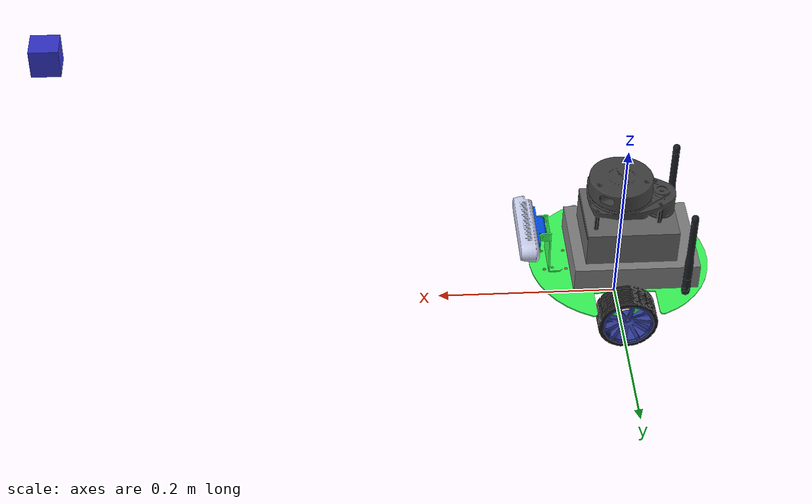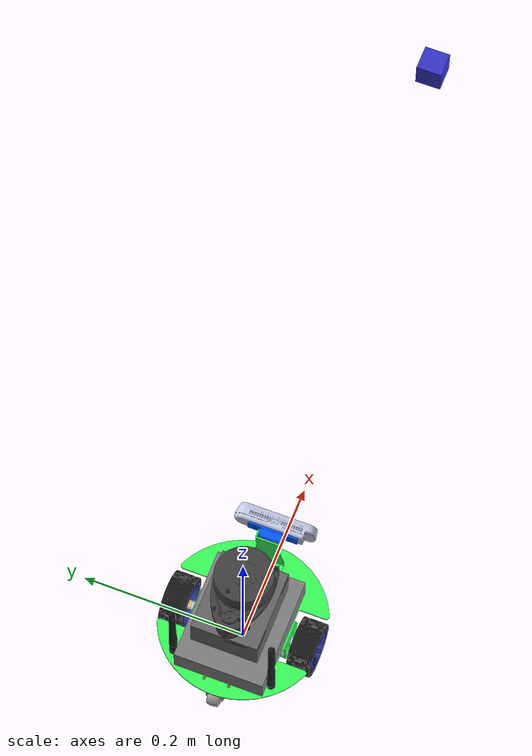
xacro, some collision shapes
<?xml version="1.0" ?>
<!-- |    This document was autogenerated by xacro from jetbot_real.urdf               | -->
<!-- |    EDITING THIS FILE BY HAND IS NOT RECOMMENDED                                 | -->
<robot name="Jetbot"  xmlns:xacro="http://ros.org/wiki/xacro">
  <xacro:arg name="botname" default=""/>
  <xacro:include filename="$(find jetbot_world)/urdf/jetbot_real.gazebo.xacro"/>

  <link name="base_footprint"/>

  <joint name="base_joint" type="fixed">
    <parent link="base_footprint"/>
    <child link="base_link"/>
    <origin rpy="0 0 0" xyz="0.0 0.0 0.05"/>
  </joint>
  <link name="base_link">
    <inertial>
      <origin rpy="0 0 0" xyz="0.00781963845778095 -7.35882317130787E-08 -0.000209926041797086"/>
      <mass value="0.045584055118095"/>
      <inertia ixx="7.90379546337164E-05" ixy="-6.67110738185195E-13" ixz="-2.39290720776838E-07" iyy="0.000115926497813917" iyz="-1.15368484324182E-10" izz="0.000189544079309469"/>
    </inertial>
    <visual>
      <origin rpy="0 0 0" xyz="0 0 0"/>
      <geometry>
        <mesh filename="package://jetbot_world/meshes/other_parts/base_link.STL"/>
      </geometry>
      <material name="">
        <color rgba="0.223529411764706 1 0.352941176470588 1"/>
      </material>
    </visual>
    <!-- 高精細メッシュ (3156 三角形) を境界ボックスの箱で
         近似した。固定関節で base_link にまとめられるリンクで、
         接地しないため形状の細部は挙動に影響しない。 -->
    <collision>
      <origin rpy="0 0 0" xyz="0.000000 0.000000 0.005922"/>
      <geometry>
        <box size="0.199396 0.184447 0.093266"/>
      </geometry>
    </collision>
  </link>
  <link name="wheel_right_link">
    <inertial>
      <origin rpy="0 0 0" xyz="1.98363002065771E-08 -8.50421726095174E-10 0.00586401160881991"/>
      <mass value="0.00172858234067031"/>
      <inertia ixx="6.56229488257871E-08" ixy="-4.0657627162479E-11" ixz="3.21252173208187E-14" iyy="6.48514677017681E-08" iyz="1.99615043771152E-15" izz="3.47684231742651E-08"/>
    </inertial>
    <visual>
      <origin rpy="0 0 0" xyz="0 0 0"/>
      <geometry>
        <mesh filename="package://jetbot_world/meshes/wheels/wheel_right_link.STL"/>
      </geometry>
      <material name="">
        <color rgba="0.952941176470588 0.796078431372549 0.486274509803922 1"/>
      </material>
    </visual>
    <!-- 衝突形状を削除した。タイヤの内側にあり接地しない。
         元は meshes/wheels/wheel_right_link.STL (1002 三角形) を使っていた。 -->
  </link>
  <joint name="wheel_right_joint" type="continuous">
    <origin rpy="-1.57079632679489 0 0" xyz="0 -0.0796 -0.0149998499189951"/>
    <parent link="base_link"/>
    <child link="wheel_right_link"/>
    <axis xyz="0 0 1"/>
    <limit effort="10" velocity="30.3"/>
  </joint>
  <link name="wheel_right_rim">
    <inertial>
      <origin rpy="0 0 0" xyz="-5.4423268058823E-08 -3.02317271563823E-08 -0.0013175684688612"/>
      <mass value="0.0150430722977072"/>
      <inertia ixx="5.42837949690631E-06" ixy="3.84011877778841E-12" ixz="-6.00504131491743E-12" iyy="5.42837483963373E-06" iyz="-3.30832951882215E-12" izz="8.62999669450023E-06"/>
    </inertial>
    <visual>
      <origin rpy="0 0 0" xyz="0 0 0"/>
      <geometry>
        <mesh filename="package://jetbot_world/meshes/wheels/wheel_right_rim.STL"/>
      </geometry>
      <material name="">
        <color rgba="0.188235294117647 0.231372549019608 0.588235294117647 1"/>
      </material>
    </visual>
    <!-- 衝突形状を削除した。タイヤの内側にあり接地しない。
         元は meshes/wheels/wheel_right_rim.STL (3284 三角形) を使っていた。 -->
  </link>
  <joint name="wheel_right_rim_joint" type="fixed">
    <origin rpy="0 0 0" xyz="0 0 0"/>
    <parent link="wheel_right_link"/>
    <child link="wheel_right_rim"/>
    <axis xyz="0 0 0"/>
  </joint>
  <link name="wheel_right_tire">
    <inertial>
      <origin rpy="0 0 0" xyz="2.82158362829299E-05 0.00140580379860784 0.000181962684636737"/>
      <mass value="0.0254630899937217"/>
      <inertia ixx="1.28912347647895E-05" ixy="7.07465873148456E-10" ixz="-9.06345483333125E-12" iyy="1.29264691304977E-05" iyz="-4.52275733373978E-10" izz="2.22597285939851E-05"/>
    </inertial>
    <visual>
      <origin rpy="0 0 0" xyz="0 0 0"/>
      <geometry>
        <mesh filename="package://jetbot_world/meshes/wheels/wheel_right_tire.STL"/>
      </geometry>
      <material name="">
        <color rgba="0.0980392156862745 0.0980392156862745 0.0980392156862745 1"/>
      </material>
    </visual>
    <!-- 接地するリンク。高精細メッシュ (13324 三角形) を
         円柱 r=0.0325 l=0.029 で近似した。寸法は元メッシュの境界ボックス
         (0.0650, 0.0650, 0.0290) から決めている。 -->
    <collision>
      <origin rpy="0 0 0" xyz="0.000008 0.000421 0.000200"/>
      <geometry>
        <cylinder radius="0.0325" length="0.029"/>
      </geometry>
    </collision>
  </link>
  <joint name="wheel_right_tire_joint" type="fixed">
    <origin rpy="0 0 0" xyz="0 0 0"/>
    <parent link="wheel_right_link"/>
    <child link="wheel_right_tire"/>
    <axis xyz="0 0 0"/>
  </joint>
  <link name="wheel_left_link">
    <inertial>
      <origin rpy="0 0 0" xyz="2.3009393140816E-09 1.97207421781531E-08 -0.00586401160882002"/>
      <mass value="0.00172858234067031"/>
      <inertia ixx="6.48580948386293E-08" ixy="8.1986795876624E-11" ixz="-7.05727936679317E-15" iyy="6.56163216889261E-08" iyz="-3.14039638015827E-14" izz="3.47684231742651E-08"/>
    </inertial>
    <visual>
      <origin rpy="0 0 0" xyz="0 0 0"/>
      <geometry>
        <mesh filename="package://jetbot_world/meshes/wheels/wheel_left_link.STL"/>
      </geometry>
      <material name="">
        <color rgba="0.952941176470588 0.796078431372549 0.486274509803922 1"/>
      </material>
    </visual>
    <!-- 衝突形状を削除した。タイヤの内側にあり接地しない。
         元は meshes/wheels/wheel_left_link.STL (1002 三角形) を使っていた。 -->
  </link>
  <joint name="wheel_left_joint" type="continuous">
    <origin rpy="-1.5707963267949 0 0" xyz="0 0.0796 -0.0149998499189951"/>
    <parent link="base_link"/>
    <child link="wheel_left_link"/>
    <axis xyz="0 0 1"/>
    <!-- wheel_right_joint と同じ理由で effort / velocity を 0 から変更した。 -->
    <limit effort="10" velocity="30.3"/>
  </joint>
  <link name="wheel_left_rim">
    <inertial>
      <origin rpy="0 0 0" xyz="-3.84671055148056E-08 -4.89502935754893E-08 0.00131756846886109"/>
      <mass value="0.0150430722977072"/>
      <inertia ixx="5.42837615703599E-06" ixy="4.37566736479211E-12" ixz="4.21736389882695E-12" iyy="5.4283781795041E-06" iyz="5.40549773271856E-12" izz="8.62999669450022E-06"/>
    </inertial>
    <visual>
      <origin rpy="0 0 0" xyz="0 0 0"/>
      <geometry>
        <mesh filename="package://jetbot_world/meshes/wheels/wheel_left_rim.STL"/>
      </geometry>
      <material name="">
        <color rgba="0.188235294117647 0.231372549019608 0.588235294117647 1"/>
      </material>
    </visual>
    <!-- 衝突形状を削除した。タイヤの内側にあり接地しない。
         元は meshes/wheels/wheel_left_rim.STL (3284 三角形) を使っていた。 -->
  </link>
  <joint name="wheel_left_rim_joint" type="fixed">
    <origin rpy="0 0 0" xyz="0 0 0"/>
    <parent link="wheel_left_link"/>
    <child link="wheel_left_rim"/>
    <axis xyz="0 0 0"/>
  </joint>
  <link name="wheel_left_tire">
    <inertial>
      <origin rpy="0 0 0" xyz="0.00139253923871222 -0.000194717544789592 -0.000181962684636799"/>
      <mass value="0.0254630899937217"/>
      <inertia ixx="1.29258070859562E-05" ixy="-4.83620972217383E-09" ixz="4.48006012970371E-10" iyy="1.28918968093311E-05" iyz="-6.26585791959336E-11" izz="2.22597285939851E-05"/>
    </inertial>
    <visual>
      <origin rpy="0 0 0" xyz="0 0 0"/>
      <geometry>
        <mesh filename="package://jetbot_world/meshes/wheels/wheel_left_tire.STL"/>
      </geometry>
      <material name="">
        <color rgba="0.0980392156862745 0.0980392156862745 0.0980392156862745 1"/>
      </material>
    </visual>
    <!-- 接地するリンク。高精細メッシュ (13324 三角形) を
         円柱 r=0.0325 l=0.029 で近似した。寸法は元メッシュの境界ボックス
         (0.0650, 0.0650, 0.0290) から決めている。 -->
    <collision>
      <origin rpy="0 0 0" xyz="0.000417 -0.000058 -0.000200"/>
      <geometry>
        <cylinder radius="0.0325" length="0.029"/>
      </geometry>
    </collision>
  </link>
  <joint name="wheel_left_tire_joint" type="fixed">
    <origin rpy="0 0 0" xyz="0 0 0"/>
    <parent link="wheel_left_link"/>
    <child link="wheel_left_tire"/>
    <axis xyz="0 0 0"/>
  </joint>
  <link name="camera_mount_link">
    <inertial>
      <origin rpy="0 0 0" xyz="0.0911446606387492 -5.00000000013164E-05 0.0475547495822917"/>
      <mass value="0.00369253564371622"/>
      <inertia ixx="7.11782812945527E-07" ixy="-3.32390099825911E-21" ixz="1.1528802234911E-23" iyy="7.28653732283989E-08" iyz="1.79708825096588E-22" izz="7.14964958537606E-07"/>
    </inertial>
    <visual>
      <origin rpy="0 0 0" xyz="0 0 0"/>
      <geometry>
        <mesh filename="package://jetbot_world/meshes/realsense/camera_mount_link.STL"/>
      </geometry>
      <material name="">
        <color rgba="0 0.345098039215686 1 1"/>
      </material>
    </visual>
    <!-- 高精細メッシュ (276 三角形) を境界ボックスの箱で
         近似した。固定関節で base_link にまとめられるリンクで、
         接地しないため形状の細部は挙動に影響しない。 -->
    <collision>
      <origin rpy="0 0 0" xyz="0.089169 -0.000050 0.047555"/>
      <geometry>
        <box size="0.011738 0.061000 0.012000"/>
      </geometry>
    </collision>
  </link>
  <joint name="camera_mount_joint" type="fixed">
    <origin rpy="0 0 0" xyz="0 0 0"/>
    <parent link="base_link"/>
    <child link="camera_mount_link"/>
    <axis xyz="0 0 0"/>
  </joint>
  <link name="camera_link">
    <inertial>
      <origin rpy="0 0 0" xyz="0.104505569284287 0.00251089945216483 0.0474874189920585"/>
      <mass value="0.0294229179644187"/>
      <inertia ixx="2.18815235786117E-05" ixy="2.75098516448229E-07" ixz="7.68689291749069E-11" iyy="1.35440746294821E-06" iyz="1.72750913510838E-09" izz="2.09152095144145E-05"/>
    </inertial>
    <visual>
      <origin rpy="0 0 0" xyz="0 0 0"/>
      <geometry>
        <mesh filename="package://jetbot_world/meshes/realsense/camera_link.STL"/>
      </geometry>
      <material name="">
        <color rgba="0.792156862745098 0.819607843137255 0.933333333333333 1"/>
      </material>
    </visual>
    <!-- 高精細メッシュ (56300 三角形) を境界ボックスの箱で
         近似した。固定関節で base_link にまとめられるリンクで、
         接地しないため形状の細部は挙動に影響しない。 -->
    <collision>
      <origin rpy="0 0 0" xyz="0.105063 0.000030 0.047555"/>
      <geometry>
        <box size="0.020050 0.098840 0.023000"/>
      </geometry>
    </collision>
  </link>
  <joint name="camera_joint" type="fixed">
    <origin rpy="0 0 0" xyz="0 0 0"/>
    <parent link="camera_mount_link"/>
    <child link="camera_link"/>
    <axis xyz="0 0 0"/>
  </joint>
  <link name="caster_back_link">
    <inertial>
      <origin rpy="0 0 0" xyz="-0.00973608929282141 0.0160138996536298 0.000112305501830591"/>
      <mass value="0.0122543299069677"/>
      <inertia ixx="1.03465897444937E-06" ixy="4.08895923420779E-08" ixz="2.41090924462367E-13" iyy="1.24920234693942E-06" iyz="-2.2498975199297E-12" izz="1.2900058431033E-06"/>
    </inertial>
    <visual>
      <origin rpy="0 0 0" xyz="0 0 0"/>
      <geometry>
        <mesh filename="package://jetbot_world/meshes/other_parts/caster_back_link.STL"/>
      </geometry>
      <material name="">
        <color rgba="0.627450980392157 0.627450980392157 0.627450980392157 1"/>
      </material>
    </visual>
    <!-- 接地するリンク。高精細メッシュ (23258 三角形) を
         球 r=0.019 で近似した。寸法は元メッシュの境界ボックス
         (0.0455, 0.0380, 0.0400) から決めている。 -->
    <collision>
      <origin rpy="0 0 0" xyz="-0.005748 0.017682 0.000000"/>
      <geometry>
        <sphere radius="0.019"/>
      </geometry>
    </collision>
  </link>
  <joint name="caster_back_joint" type="fixed">
    <origin rpy="-1.5707963267949 0 0" xyz="-0.072 0 -0.0103157534698361"/>
    <parent link="base_link"/>
    <child link="caster_back_link"/>
    <axis xyz="0 0 0"/>
  </joint>
  <link name="caster_front_link">
    <inertial>
      <origin rpy="0 0 0" xyz="-0.00973608929282145 0.0136318109633328 0.00011230550183057"/>
      <mass value="0.0122543299069677"/>
      <inertia ixx="1.03465897444937E-06" ixy="4.08895923420787E-08" ixz="2.41090924810355E-13" iyy="1.24920234693941E-06" iyz="-2.24989751966103E-12" izz="1.29000584310329E-06"/>
    </inertial>
    <visual>
      <origin rpy="0 0 0" xyz="0 0 0"/>
      <geometry>
        <mesh filename="package://jetbot_world/meshes/other_parts/caster_front_link.STL"/>
      </geometry>
      <material name="">
        <color rgba="0.627450980392157 0.627450980392157 0.627450980392157 1"/>
      </material>
    </visual>
    <!-- 接地するリンク。高精細メッシュ (23258 三角形) を
         球 r=0.019 で近似した。寸法は元メッシュの境界ボックス
         (0.0455, 0.0380, 0.0400) から決めている。 -->
    <collision>
      <origin rpy="0 0 0" xyz="-0.005748 0.015300 0.000000"/>
      <geometry>
        <sphere radius="0.019"/>
      </geometry>
    </collision>
  </link>
  <joint name="caster_front_joint" type="fixed">
    <origin rpy="-1.5707963267949 0 0" xyz="0.072 0 -0.0126978421601332"/>
    <parent link="base_link"/>
    <child link="caster_front_link"/>
    <axis xyz="0 0 0"/>
  </joint>
  <link name="imu_link">
    <inertial>
      <origin rpy="0 0 0" xyz="0.00785413895950092 0.000589850419601447 -0.00363505947193948"/>
      <mass value="0.0511068131705108"/>
      <inertia ixx="3.02554869448374E-05" ixy="-6.81147489939493E-08" ixz="4.3124398785099E-10" iyy="3.79539557275355E-05" iyz="-1.32997366822506E-10" izz="6.69860000874932E-05"/>
    </inertial>
    <visual>
      <origin rpy="0 0 0" xyz="0 0 0"/>
      <geometry>
        <mesh filename="package://jetbot_world/meshes/other_parts/imu_link.STL"/>
      </geometry>
      <material name="">
        <color rgba="0.5 0.5 0.5 1"/>
      </material>
    </visual>
    <!-- 高精細メッシュ (100902 三角形) を境界ボックスの箱で
         近似した。固定関節で base_link にまとめられるリンクで、
         接地しないため形状の細部は挙動に影響しない。 -->
    <collision>
      <origin rpy="0 0 0" xyz="-0.002854 -0.000460 -0.008186"/>
      <geometry>
        <box size="0.137467 0.108247 0.030150"/>
      </geometry>
    </collision>
  </link>
  <joint name="imu_joint" type="fixed">
    <origin rpy="0 0 0" xyz="-0.00987996130762421 -0.000612791192577962 0.02311148"/>
    <parent link="base_link"/>
    <child link="imu_link"/>
    <axis xyz="0 0 0"/>
  </joint>
  <link name="base_scan">
    <inertial>
      <origin rpy="0 0 0" xyz="-0.013480243056544 0.000481284255951939 -0.00102869936495666"/>
      <mass value="0.0634432857550415"/>
      <inertia ixx="1.68383298504221E-05" ixy="-1.0448046286551E-07" ixz="4.28825686069912E-07" iyy="2.10729825490332E-05" iyz="-9.43318165957986E-09" izz="3.56809250260432E-05"/>
    </inertial>
    <visual>
      <origin rpy="0 0 0" xyz="0 0 0"/>
      <geometry>
        <mesh filename="package://jetbot_world/meshes/other_parts/base_scan.STL"/>
      </geometry>
      <material name="">
        <color rgba="0.250980392156863 0.250980392156863 0.250980392156863 1"/>
      </material>
    </visual>
    <!-- 高精細メッシュ (79672 三角形) を境界ボックスの箱で
         近似した。固定関節で base_link にまとめられるリンクで、
         接地しないため形状の細部は挙動に影響しない。 -->
    <collision>
      <origin rpy="0 0 0" xyz="-0.012854 0.000000 -0.000300"/>
      <geometry>
        <box size="0.097488 0.071776 0.051400"/>
      </geometry>
    </collision>
  </link>
  <joint name="scan_joint" type="fixed">
    <origin rpy="0 0 0" xyz="0.005050049260789 0.000300068757988995 0.092186480000001"/>
    <parent link="base_link"/>
    <child link="base_scan"/>
    <axis xyz="0 0 0"/>
  </joint>
  <link name="left_motor_link">
    <inertial>
      <origin rpy="0 0 0" xyz="-2.95081696598254E-07 0.0340253884275023 -0.0216175641159498"/>
      <mass value="0.0142497272964593"/>
      <inertia ixx="1.363828934402E-06" ixy="-1.47318833570828E-11" ixz="-3.04947037598095E-10" iyy="2.22876633823434E-06" iyz="7.05904980580848E-09" izz="1.38872041914448E-06"/>
    </inertial>
    <visual>
      <origin rpy="0 0 0" xyz="0 0 0"/>
      <geometry>
        <mesh filename="package://jetbot_world/meshes/other_parts/left_motor_link.STL"/>
      </geometry>
      <material name="">
        <color rgba="0.792156862745098 0.819607843137255 0.933333333333333 1"/>
      </material>
    </visual>
    <!-- 高精細メッシュ (8618 三角形) を境界ボックスの箱で
         近似した。固定関節で base_link にまとめられるリンクで、
         接地しないため形状の細部は挙動に影響しない。 -->
    <collision>
      <origin rpy="0 0 0" xyz="0.000763 0.043300 -0.022000"/>
      <geometry>
        <box size="0.038526 0.072600 0.036967"/>
      </geometry>
    </collision>
  </link>
  <joint name="left_motor_joint" type="fixed">
    <origin rpy="0 0 0" xyz="0 0 0"/>
    <parent link="base_link"/>
    <child link="left_motor_link"/>
    <axis xyz="0 0 0"/>
  </joint>
  <link name="right_motor_link">
    <inertial>
      <origin rpy="0 0 0" xyz="2.9508169580722E-07 -0.0340253884275023 -0.0216175641159498"/>
      <mass value="0.0142497272964593"/>
      <inertia ixx="1.36382893440199E-06" ixy="-1.4731883386706E-11" ixz="3.0494703759845E-10" iyy="2.22876633823434E-06" iyz="-7.05904980580746E-09" izz="1.38872041914447E-06"/>
    </inertial>
    <visual>
      <origin rpy="0 0 0" xyz="0 0 0"/>
      <geometry>
        <mesh filename="package://jetbot_world/meshes/other_parts/right_motor_link.STL"/>
      </geometry>
      <material name="">
        <color rgba="0.792156862745098 0.819607843137255 0.933333333333333 1"/>
      </material>
    </visual>
    <!-- 高精細メッシュ (8618 三角形) を境界ボックスの箱で
         近似した。固定関節で base_link にまとめられるリンクで、
         接地しないため形状の細部は挙動に影響しない。 -->
    <collision>
      <origin rpy="0 0 0" xyz="-0.000763 -0.043300 -0.022000"/>
      <geometry>
        <box size="0.038526 0.072600 0.036967"/>
      </geometry>
    </collision>
  </link>
  <joint name="right_motor_joint" type="fixed">
    <origin rpy="0 0 0" xyz="0 0 0"/>
    <parent link="base_link"/>
    <child link="right_motor_link"/>
    <axis xyz="0 0 0"/>
  </joint>
  <link name="upper_plate_link">
    <inertial>
      <origin rpy="0 0 0" xyz="-0.00767109086663368 0.00605296729060913 0.0621864800000008"/>
      <mass value="0.017501498901108"/>
      <inertia ixx="8.93579854534511E-06" ixy="-2.74359099373368E-07" ixz="4.81575673334949E-19" iyy="1.85512486025031E-05" iyz="7.07344062963383E-21" izz="2.74607948994966E-05"/>
    </inertial>
    <visual>
      <origin rpy="0 0 0" xyz="0 0 0"/>
      <geometry>
        <mesh filename="package://jetbot_world/meshes/other_parts/upper_plate_link.STL"/>
      </geometry>
      <material name="">
        <color rgba="0.3 0.3 0.3 1"/>
      </material>
    </visual>
    <!-- 高精細メッシュ (680 三角形) を境界ボックスの箱で
         近似した。固定関節で base_link にまとめられるリンクで、
         接地しないため形状の細部は挙動に影響しない。 -->
    <collision>
      <origin rpy="0 0 0" xyz="-0.006950 0.000300 0.062186"/>
      <geometry>
        <box size="0.100000 0.079000 0.003000"/>
      </geometry>
    </collision>
  </link>
  <joint name="upper_plate_joint" type="fixed">
    <origin rpy="0 0 0" xyz="0 0 0"/>
    <parent link="base_link"/>
    <child link="upper_plate_link"/>
    <axis xyz="0 0 0"/>
  </joint>
  <link name="antenna_link">
    <inertial>
      <origin rpy="0 0 0" xyz="-0.0660028995154912 4.40577031377808E-05 0.046811826812688"/>
      <mass value="0.0134623075785536"/>
      <inertia ixx="5.56374948010225E-06" ixy="-1.03911483629354E-10" ixz="-1.35565928440356E-09" iyy="5.56559707819264E-06" iyz="2.22326930039963E-08" izz="1.27639331293959E-07"/>
    </inertial>
    <visual>
      <origin rpy="0 0 0" xyz="0 0 0"/>
      <geometry>
        <mesh filename="package://jetbot_world/meshes/other_parts/antenna_link.STL"/>
      </geometry>
      <material name="">
        <color rgba="0.0941176470588235 0.109803921568627 0.12156862745098 1"/>
      </material>
    </visual>
    <!-- 高精細メッシュ (28672 三角形) を境界ボックスの箱で
         近似した。固定関節で base_link にまとめられるリンクで、
         接地しないため形状の細部は挙動に影響しない。 -->
    <collision>
      <origin rpy="0 0 0" xyz="-0.066000 0.000000 0.047300"/>
      <geometry>
        <box size="0.009980 0.130000 0.125700"/>
      </geometry>
    </collision>
  </link>
  <joint name="antenna_joint" type="fixed">
    <origin rpy="0 0 0" xyz="0 0 0"/>
    <parent link="base_link"/>
    <child link="antenna_link"/>
    <axis xyz="0 0 0"/>
  </joint>
  <link name="bolt1_link">
    <inertial>
      <origin rpy="0 0 0" xyz="-0.00455766525705633 -0.00317236412008241 0.0247802088927017"/>
      <mass value="0.00350899316323701"/>
      <inertia ixx="2.155192655442E-07" ixy="9.56888278033086E-24" ixz="-1.90766612358315E-21" iyy="2.155192655442E-07" iyz="-1.87384696573834E-23" izz="1.35592340647674E-08"/>
    </inertial>
    <visual>
      <origin rpy="0 0 0" xyz="0 0 0"/>
      <geometry>
        <mesh filename="package://jetbot_world/meshes/other_parts/bolt1_link.STL"/>
      </geometry>
      <material name="">
        <color rgba="0.952941176470588 0.796078431372549 0.486274509803922 1"/>
      </material>
    </visual>
    <!-- 高精細メッシュ (1888 三角形) を境界ボックスの箱で
         近似した。固定関節で base_link にまとめられるリンクで、
         接地しないため形状の細部は挙動に影響しない。 -->
    <collision>
      <origin rpy="0 0 0" xyz="0.000000 0.000000 0.025843"/>
      <geometry>
        <box size="0.172680 0.095404 0.069686"/>
      </geometry>
    </collision>
  </link>
  <joint name="bolt1_joint" type="fixed">
    <origin rpy="0 0 0" xyz="0 0 0"/>
    <parent link="base_link"/>
    <child link="bolt1_link"/>
    <axis xyz="0 0 0"/>
  </joint>
  <link name="bolt2_link">
    <inertial>
      <origin rpy="0 0 0" xyz="-0.00194995073921093 0.000300068757989755 0.07618648"/>
      <mass value="0.00138168957720949"/>
      <inertia ixx="7.45830222388665E-08" ixy="3.22236047148893E-24" ixz="-2.87219091256268E-24" iyy="7.45830222388665E-08" iyz="-7.36261831006086E-24" izz="5.24004685174395E-09"/>
    </inertial>
    <visual>
      <origin rpy="0 0 0" xyz="0 0 0"/>
      <geometry>
        <mesh filename="package://jetbot_world/meshes/other_parts/bolt2_link.STL"/>
      </geometry>
      <material name="">
        <color rgba="0.0941176470588235 0.109803921568627 0.12156862745098 1"/>
      </material>
    </visual>
    <!-- 高精細メッシュ (352 三角形) を境界ボックスの箱で
         近似した。固定関節で base_link にまとめられるリンクで、
         接地しないため形状の細部は挙動に影響しない。 -->
    <collision>
      <origin rpy="0 0 0" xyz="-0.001950 0.000300 0.076186"/>
      <geometry>
        <box size="0.074650 0.061369 0.025000"/>
      </geometry>
    </collision>
  </link>
  <joint name="bolt2_joint" type="fixed">
    <origin rpy="0 0 0" xyz="0 0 0"/>
    <parent link="base_link"/>
    <child link="bolt2_link"/>
    <axis xyz="0 0 0"/>
  </joint>
  <link name="nano_link">
    <inertial>
      <origin rpy="0 0 0" xyz="-0.00451688299579642 -0.00383913355729881 0.0407445974225003"/>
      <mass value="0.0559886683886946"/>
      <inertia ixx="1.11286118138229E-05" ixy="-6.96076101617625E-09" ixz="1.44681908116963E-07" iyy="2.01937826489502E-05" iyz="-1.30775142928514E-08" izz="2.98989437667499E-05"/>
    </inertial>
    <visual>
      <origin rpy="0 0 0" xyz="0 0 0"/>
      <geometry>
        <mesh filename="package://jetbot_world/meshes/other_parts/nano_link.STL"/>
      </geometry>
      <material name="">
        <color rgba="0.4 0.4 0.4 1"/>
      </material>
    </visual>
    <!-- 高精細メッシュ (374540 三角形) を境界ボックスの箱で
         近似した。固定関節で base_link にまとめられるリンクで、
         接地しないため形状の細部は挙動に影響しない。 -->
    <collision>
      <origin rpy="0 0 0" xyz="-0.006950 0.001313 0.048048"/>
      <geometry>
        <box size="0.100000 0.081025 0.042290"/>
      </geometry>
    </collision>
  </link>
  <joint name="nano_joint" type="fixed">
    <origin rpy="0 0 0" xyz="0 0 0"/>
    <parent link="base_link"/>
    <child link="nano_link"/>
    <axis xyz="0 0 0"/>
  </joint>

  <!-- Second camera link -->
<link name="camera2_link">
  <visual>
    <origin rpy="0 0 0" xyz="0 0 0"/>
    <geometry>
      <box size="0.03 0.03 0.03"/>
    </geometry>
    <material name="">
      <color rgba="0.2 0.2 0.8 1"/>
    </material>
  </visual>
</link>

<joint name="camera2_joint" type="fixed">
  <parent link="upper_plate_link"/>
  <child link="camera2_link"/>
  <origin xyz="0.6 0 0.3" rpy="0 1.57 0"/>
  <axis xyz="0 0 0"/>
</joint>

</robot>
